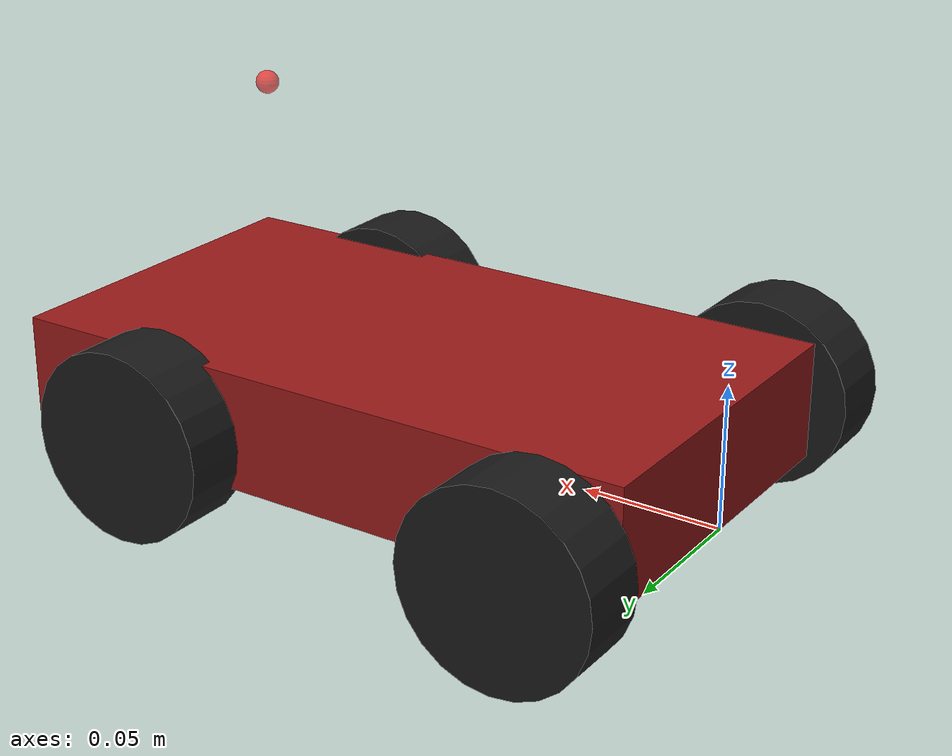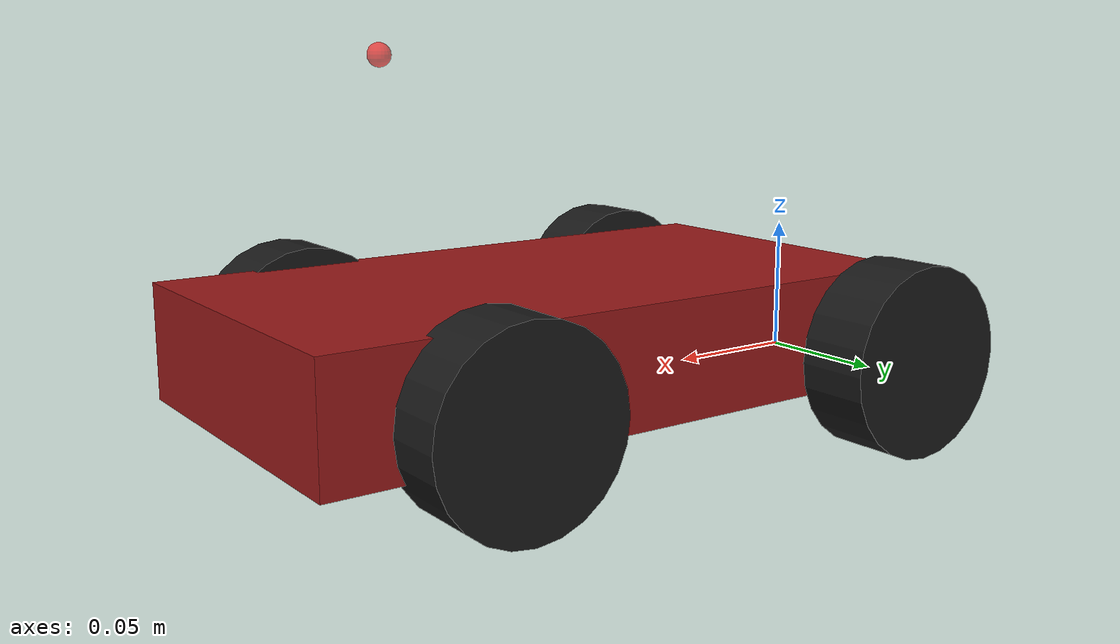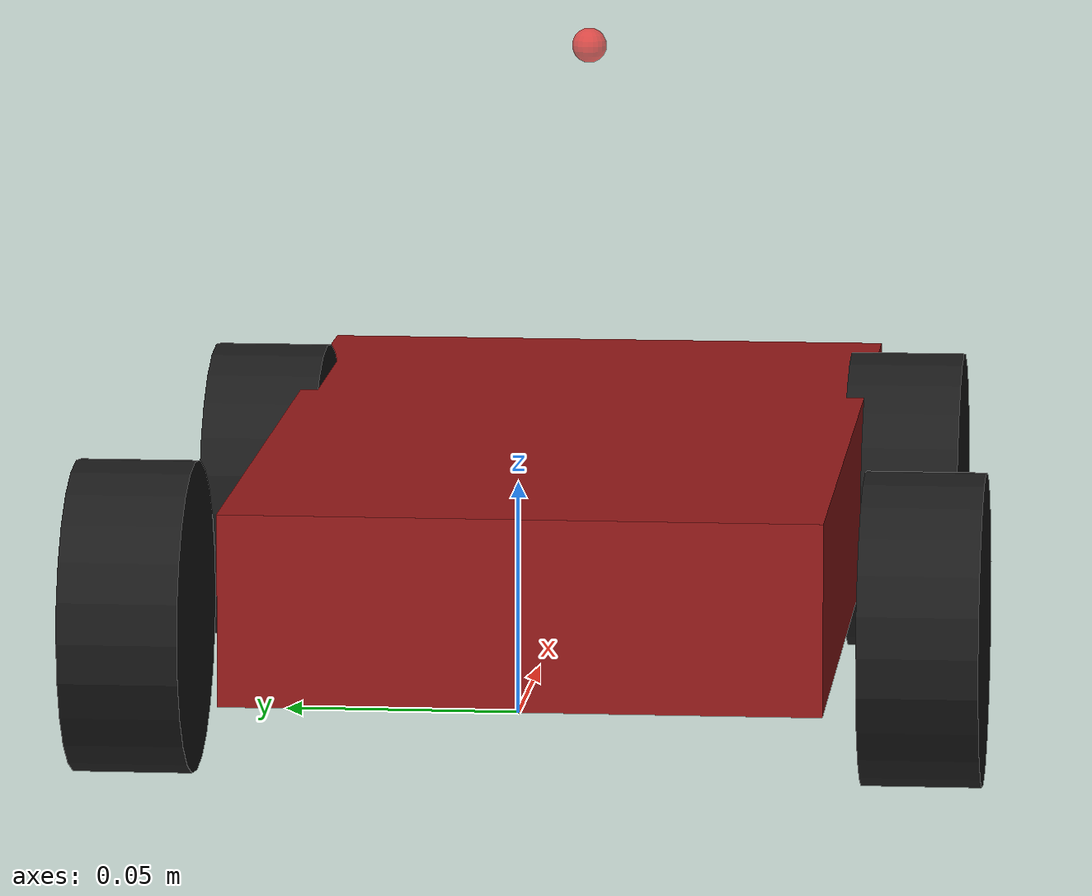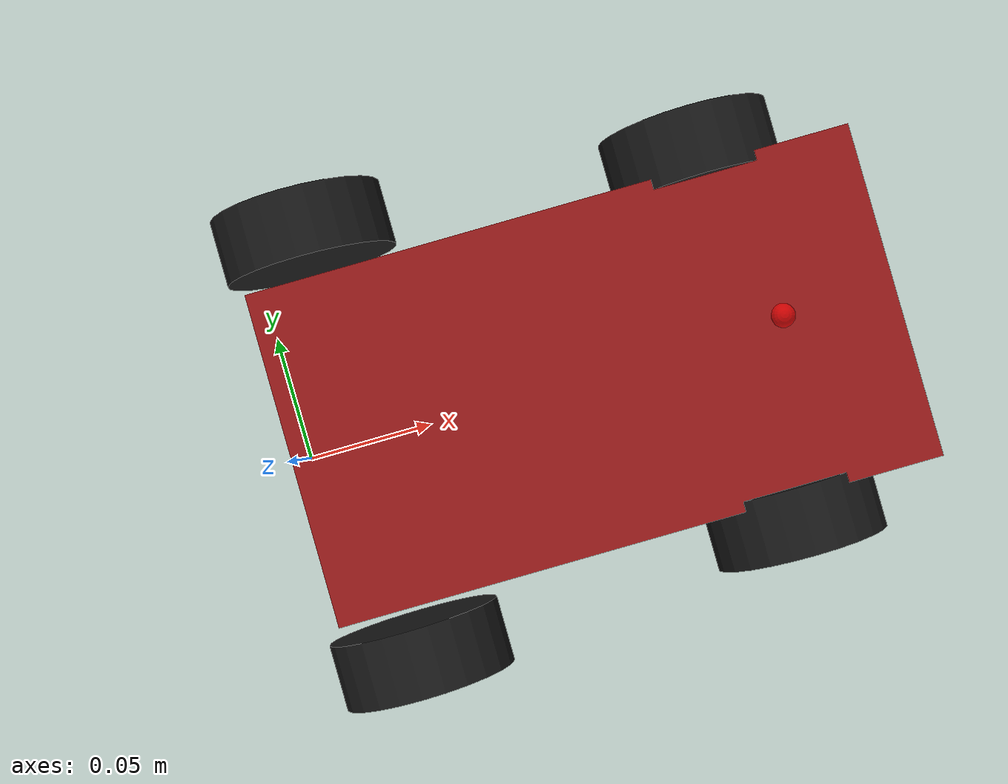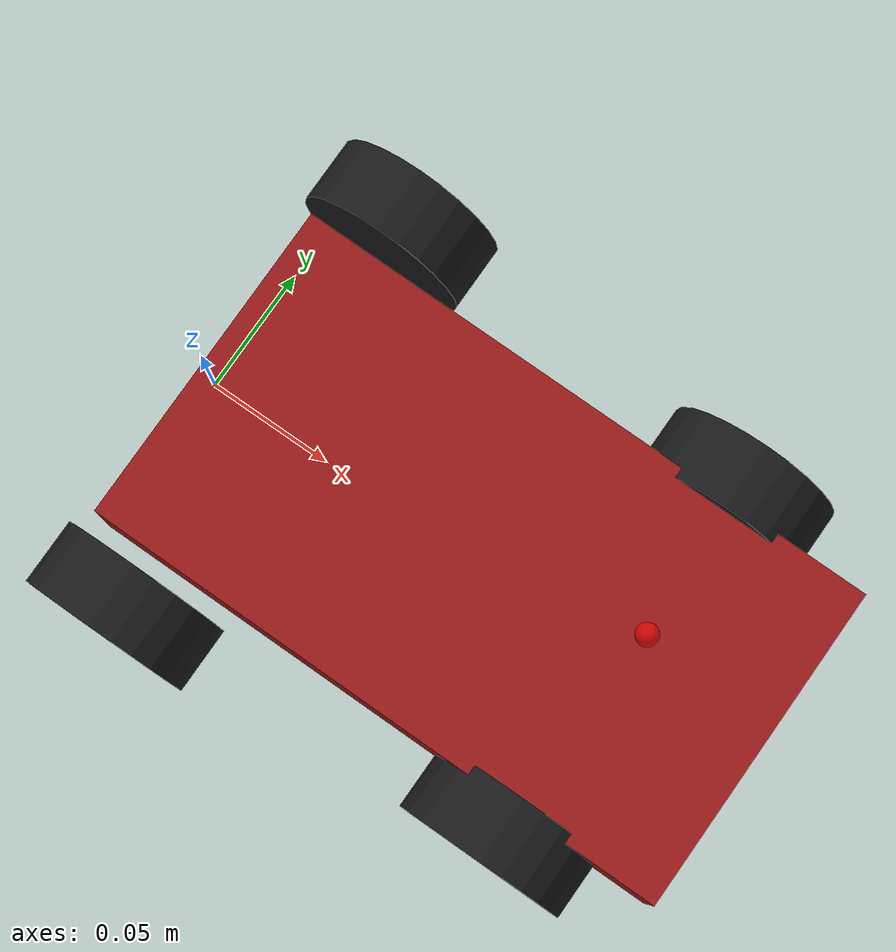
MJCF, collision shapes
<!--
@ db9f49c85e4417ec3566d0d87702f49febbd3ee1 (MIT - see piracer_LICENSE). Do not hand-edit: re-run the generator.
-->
<mujoco model="piracer">
  <compiler angle="radian" meshdir="meshes" autolimits="true"/>

  <default>
    <default class="piracer">
      <default class="visual">
        <geom type="mesh" contype="0" conaffinity="0" group="2"/>
      </default>
      <default class="collision">
        <geom type="box" group="3" rgba="0.6 0.1 0.1 0.35"/>
      </default>
      <default class="wheel_collision">
        <geom type="cylinder" group="3" rgba="0.1 0.1 0.1 0.4" friction="1.2 0.005 0.0001"/>
      </default>
      <default class="wheel">
        <joint damping="0.0005" armature="1e-5"/>
      </default>
      <default class="steer">
        <!-- Damped and given armature so the rack holds its angle when the car stops, which is what
             a real steering linkage does and what ackermann_drive's odometry reads back. -->
        <joint damping="0.01" armature="1e-4"/>
      </default>
    </default>
  </default>

  <asset>
    <material name="mat_piracer_battery" rgba="0.80 0.92 0.55 1"/>
    <material name="mat_piracer_board" rgba="0.12 0.12 0.12 1"/>
    <material name="mat_piracer_chassis" rgba="0.22 0.70 0.24 1"/>
    <material name="mat_piracer_motor" rgba="0.62 0.62 0.62 1"/>
    <material name="mat_piracer_pcb" rgba="0.05 0.35 0.12 1"/>
    <material name="mat_piracer_rim" rgba="0.10 0.20 0.80 1"/>
    <material name="mat_piracer_tyre" rgba="0.10 0.10 0.10 1"/>
    <mesh file="board.stl" scale="0.001 0.001 0.001"/>
    <mesh file="chassis.stl" scale="0.001 0.001 0.001"/>
    <mesh file="cover.stl" scale="0.001 0.001 0.001"/>
    <mesh file="disk.stl" scale="0.001 0.001 0.001"/>
    <mesh file="motor.stl" scale="0.001 0.001 0.001"/>
    <mesh file="rpi.stl" scale="0.001 0.001 0.001"/>
    <mesh file="tire.stl" scale="0.001 0.001 0.001"/>
  </asset>

  <worldbody>
    <body name="base_link" childclass="piracer">
      <freejoint name="base_free"/>
      <site name="base_imu" pos="0 0 0" size="0.005" rgba="0 0 0 0"/>
      <inertial pos="0.118 0 0.021" mass="1.3" diaginertia="0.00202193 0.00622483 0.00786457"/>
      <geom class="visual" mesh="chassis" material="mat_piracer_chassis"/>
      <geom class="visual" mesh="board" material="mat_piracer_board" pos="0.045 0 0.002"/>
      <geom class="visual" mesh="rpi" material="mat_piracer_pcb" pos="0.08 0 0.029"/>
      <geom class="visual" mesh="motor" material="mat_piracer_motor" pos="0.024 0.047 0.023" quat="0.7071069 0.7071067 0 0"/>
      <geom class="visual" mesh="motor" material="mat_piracer_motor" pos="0.024 -0.047 0.023" quat="0.7071069 0.7071067 0 0"/>
      <geom class="visual" mesh="cover" material="mat_piracer_battery" pos="0.024 0 0.023" quat="0.7071069 0.7071067 0 0"/>
      <geom class="collision" name="chassis_geom" size="0.118 0.065 0.021" pos="0.118 0 0.021"/>
      <site name="camera" pos="0.180 0 0.120" size="0.004" rgba="1 0 0 0.6"/>
      <body name="left_steer" pos="0.179 0.060 0.013">
        <inertial pos="0 0 0" mass="0.01" diaginertia="1e-6 1e-6 1e-6"/>
        <joint name="left_steer_joint" class="steer" axis="0 0 1" range="-0.5 0.5"/>
        <body name="front_left_tire" pos="0 0.014 0.002" quat="0.7071069 0.7071067 0 0">
          <inertial pos="0 0 0" mass="0.045" diaginertia="1.554e-05 1.554e-05 2.601e-05"/>
          <joint name="front_left_tire_joint" class="wheel" axis="0 0 1"/>
          <geom class="visual" mesh="tire" material="mat_piracer_tyre"/>
          <geom class="visual" mesh="disk" material="mat_piracer_rim" quat="3.267949e-07 -1 0 0"/>
          <geom class="wheel_collision" name="front_left_tire_geom" size="0.034 0.013"/>
        </body>
      </body>
      <body name="right_steer" pos="0.179 -0.060 0.013">
        <inertial pos="0 0 0" mass="0.01" diaginertia="1e-6 1e-6 1e-6"/>
        <joint name="right_steer_joint" class="steer" axis="0 0 1" range="-0.5 0.5"/>
        <body name="front_right_tire" pos="0 -0.014 0.002" quat="0.7071069 0.7071067 0 0">
          <inertial pos="0 0 0" mass="0.045" diaginertia="1.554e-05 1.554e-05 2.601e-05"/>
          <joint name="front_right_tire_joint" class="wheel" axis="0 0 1"/>
          <geom class="visual" mesh="tire" material="mat_piracer_tyre"/>
          <geom class="visual" mesh="disk" material="mat_piracer_rim"/>
          <geom class="wheel_collision" name="front_right_tire_geom" size="0.034 0.013"/>
        </body>
      </body>
      <body name="rear_left_tire" pos="0.024 0.0855 0.015" quat="0.7071069 -0.7071067 0 0">
        <inertial pos="0 0 0" mass="0.045" diaginertia="1.554e-05 1.554e-05 2.601e-05"/>
        <joint name="rear_left_tire_joint" class="wheel" axis="0 0 1"/>
        <geom class="visual" mesh="tire" material="mat_piracer_tyre"/>
        <geom class="visual" mesh="disk" material="mat_piracer_rim" quat="3.267949e-07 -1 0 0"/>
        <geom class="wheel_collision" name="rear_left_tire_geom" size="0.034 0.013"/>
      </body>
      <body name="rear_right_tire" pos="0.024 -0.0855 0.015" quat="0.7071069 -0.7071067 0 0">
        <inertial pos="0 0 0" mass="0.045" diaginertia="1.554e-05 1.554e-05 2.601e-05"/>
        <joint name="rear_right_tire_joint" class="wheel" axis="0 0 1"/>
        <geom class="visual" mesh="tire" material="mat_piracer_tyre"/>
        <geom class="visual" mesh="disk" material="mat_piracer_rim"/>
        <geom class="wheel_collision" name="rear_right_tire_geom" size="0.034 0.013"/>
      </body>
    </body>
  </worldbody>

  <contact>
    <exclude body1="base_link" body2="front_left_tire"/>
    <exclude body1="base_link" body2="front_right_tire"/>
    <!-- Tyre/floor friction stated explicitly: MuJoCo max-combines per-geom friction, so a
         high-friction scene floor would otherwise override the tyres and change how the car
         understeers. -->
    <pair geom1="front_left_tire_geom" geom2="floor" condim="3" solref="0.01 1" friction="1.2 1.2 0.005 0.0001 0.0001"/>
    <pair geom1="front_right_tire_geom" geom2="floor" condim="3" solref="0.01 1" friction="1.2 1.2 0.005 0.0001 0.0001"/>
    <pair geom1="rear_left_tire_geom" geom2="floor" condim="3" solref="0.01 1" friction="1.2 1.2 0.005 0.0001 0.0001"/>
    <pair geom1="rear_right_tire_geom" geom2="floor" condim="3" solref="0.01 1" friction="1.2 1.2 0.005 0.0001 0.0001"/>
  </contact>

  <actuator>
    <position name="left_steer_motor" joint="left_steer_joint" kp="40.0"
              ctrlrange="-0.5 0.5" forcerange="-5 5"/>
    <position name="right_steer_motor" joint="right_steer_joint" kp="40.0"
              ctrlrange="-0.5 0.5" forcerange="-5 5"/>
    <velocity name="rear_left_wheel_motor" joint="rear_left_tire_joint" kv="0.5"
              ctrlrange="-77 77" forcerange="-2 2"/>
    <velocity name="rear_right_wheel_motor" joint="rear_right_tire_joint" kv="0.5"
              ctrlrange="-77 77" forcerange="-2 2"/>
  </actuator>

  <keyframe>
    <!-- base_link is the source's chassis origin, 0.019 m above the ground once the tyres
         are on it; spawn a hair higher so they settle rather than start interpenetrating. -->
    <key name="home" qpos="0 0 0.021 1 0 0 0  0 0 0 0 0 0"/>
  </keyframe>
</mujoco>
